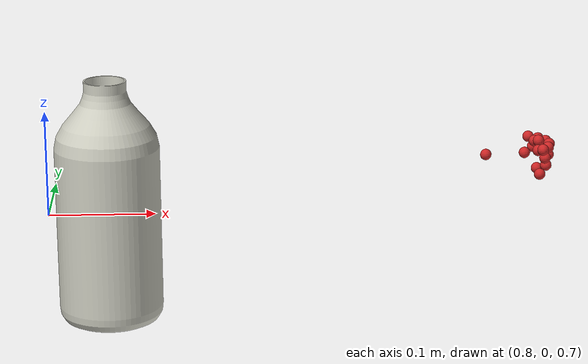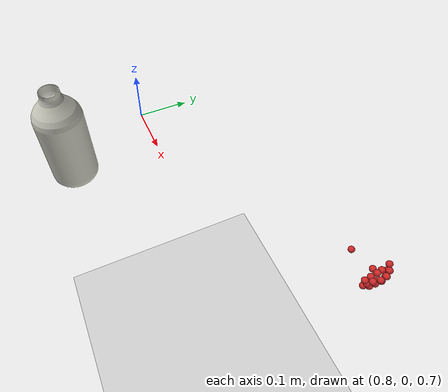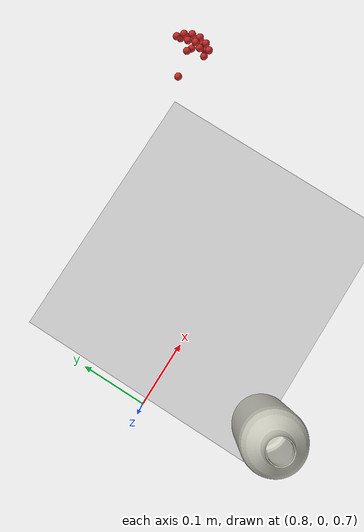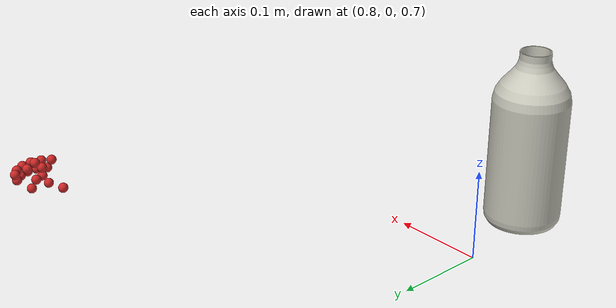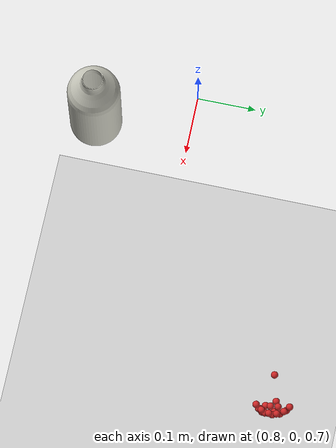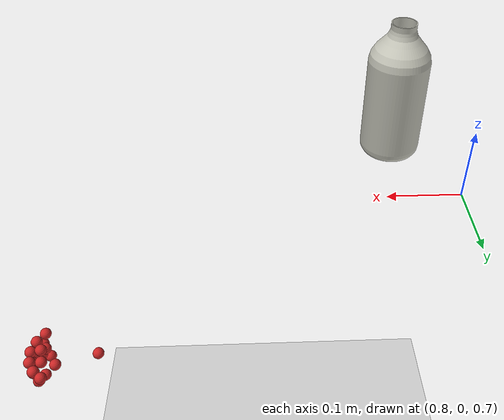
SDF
<sdf version="1.4">
 <world name="default">
  <model name="ground_plane">
   <static>1</static>
   <link name="link">
    <collision name="collision">
     <geometry><plane><normal>0 0 1</normal><size>100 100</size></plane></geometry>
     <surface><friction><ode><mu>100</mu><mu2>50</mu2></ode></friction></surface>
    </collision>
    <visual name="visual">
     <cast_shadows>0</cast_shadows>
     <geometry><plane><normal>0 0 1</normal><size>100 100</size></plane></geometry>
     <material>
      <script><uri>file://media/materials/scripts/gazebo.material</uri><name>Gazebo/Grey</name></script>
     </material>
    </visual>
    <velocity_decay><linear>0</linear><angular>0</angular></velocity_decay>
   </link>
  </model>
  <model name="milk_bottle">
   <static>0</static>
   <link name="link">
    <inertial>
     <mass>0.25</mass>
     <inertia><ixx>0</ixx><ixy>0</ixy><ixz>0</ixz><iyy>0</iyy><iyz>0</iyz><izz>0</izz></inertia>
    </inertial>
    <collision name="colision1">
     <geometry><mesh><uri>model://milk_bottle/meshes/milk_bottle.dae</uri><scale>1 1 1</scale></mesh></geometry>
    </collision>
    <visual name="visual1">
     <geometry><mesh><uri>model://milk_bottle/meshes/milk_bottle.dae</uri><scale>1 1 1</scale></mesh></geometry>
     <material>
      <script><uri>file://media/materials/scripts/gazebo.material</uri><name>Gazebo/PaintedWall</name></script>
     </material>
    </visual>
    <velocity_decay><linear>0</linear><angular>0</angular></velocity_decay>
   </link>
   <pose>0.864342 -0.164381 0.752694 -0.000122 0.000148 -3e-06</pose>
  </model>
  <model name="sphere33">
   <pose>0.022358 -0.024231 -0.158207 0.008135 -0.067468 -0.001806</pose>
   <link name="link">
    <pose>1.27614 0.256149 0.758288 0 -0 0</pose>
    <inertial>
     <mass>0.001</mass>
     <inertia><ixx>0.004</ixx><ixy>0</ixy><ixz>0</ixz><iyy>0.004</iyy><iyz>0</iyz><izz>0.004</izz></inertia>
    </inertial>
    <collision name="collision">
     <surface>
      <contact><ode><kp>1e+10</kp><kd>1</kd></ode></contact>
      <friction><ode><mu>0.01</mu><mu2>0.01</mu2></ode></friction>
     </surface>
     <geometry><sphere><radius>0.006</radius></sphere></geometry>
    </collision>
    <visual name="visual">
     <geometry><sphere><radius>0.006</radius></sphere></geometry>
     <material>
      <script><uri>file://media/materials/scripts/gazebo.material</uri><name>Gazebo/Red</name></script>
     </material>
    </visual>
    <velocity_decay><linear>0</linear><angular>0</angular></velocity_decay>
   </link>
   <static>0</static>
  </model>
  <model name="sphere38">
   <pose>0.009543 -0.038535 -0.086133 -0.012007 -0.003681 0.004695</pose>
   <link name="link">
    <pose>1.30014 0.232149 0.770288 0 -0 0</pose>
    <inertial>
     <mass>0.001</mass>
     <inertia><ixx>0.004</ixx><ixy>0</ixy><ixz>0</ixz><iyy>0.004</iyy><iyz>0</iyz><izz>0.004</izz></inertia>
    </inertial>
    <collision name="collision">
     <surface>
      <contact><ode><kp>1e+10</kp><kd>1</kd></ode></contact>
      <friction><ode><mu>0.01</mu><mu2>0.01</mu2></ode></friction>
     </surface>
     <geometry><sphere><radius>0.006</radius></sphere></geometry>
    </collision>
    <visual name="visual">
     <geometry><sphere><radius>0.006</radius></sphere></geometry>
     <material>
      <script><uri>file://media/materials/scripts/gazebo.material</uri><name>Gazebo/Red</name></script>
     </material>
    </visual>
    <velocity_decay><linear>0</linear><angular>0</angular></velocity_decay>
   </link>
   <static>0</static>
  </model>
  <model name="sphere53">
   <pose>0.016061 -0.043295 -0.139832 0.002945 -0.018806 0.00051</pose>
   <link name="link">
    <pose>1.30014 0.256149 0.782288 0 -0 0</pose>
    <inertial>
     <mass>0.001</mass>
     <inertia><ixx>0.004</ixx><ixy>0</ixy><ixz>0</ixz><iyy>0.004</iyy><iyz>0</iyz><izz>0.004</izz></inertia>
    </inertial>
    <collision name="collision">
     <surface>
      <contact><ode><kp>1e+10</kp><kd>1</kd></ode></contact>
      <friction><ode><mu>0.01</mu><mu2>0.01</mu2></ode></friction>
     </surface>
     <geometry><sphere><radius>0.006</radius></sphere></geometry>
    </collision>
    <visual name="visual">
     <geometry><sphere><radius>0.006</radius></sphere></geometry>
     <material>
      <script><uri>file://media/materials/scripts/gazebo.material</uri><name>Gazebo/Red</name></script>
     </material>
    </visual>
    <velocity_decay><linear>0</linear><angular>0</angular></velocity_decay>
   </link>
   <static>0</static>
  </model>
  <model name="sphere59">
   <pose>0.014551 -0.04065 -0.125415 -0.013802 -0.008228 0.000565</pose>
   <link name="link">
    <pose>1.30014 0.244149 0.794288 0 -0 0</pose>
    <inertial>
     <mass>0.001</mass>
     <inertia><ixx>0.004</ixx><ixy>0</ixy><ixz>0</ixz><iyy>0.004</iyy><iyz>0</iyz><izz>0.004</izz></inertia>
    </inertial>
    <collision name="collision">
     <surface>
      <contact><ode><kp>1e+10</kp><kd>1</kd></ode></contact>
      <friction><ode><mu>0.01</mu><mu2>0.01</mu2></ode></friction>
     </surface>
     <geometry><sphere><radius>0.006</radius></sphere></geometry>
    </collision>
    <visual name="visual">
     <geometry><sphere><radius>0.006</radius></sphere></geometry>
     <material>
      <script><uri>file://media/materials/scripts/gazebo.material</uri><name>Gazebo/Red</name></script>
     </material>
    </visual>
    <velocity_decay><linear>0</linear><angular>0</angular></velocity_decay>
   </link>
   <static>0</static>
  </model>
  <model name="sphere68">
   <pose>0.007541 -0.009703 -0.114195 0.001084 0.004724 -0.00044</pose>
   <link name="link">
    <pose>1.30014 0.244149 0.806288 0 -0 0</pose>
    <inertial>
     <mass>0.001</mass>
     <inertia><ixx>0.004</ixx><ixy>0</ixy><ixz>0</ixz><iyy>0.004</iyy><iyz>0</iyz><izz>0.004</izz></inertia>
    </inertial>
    <collision name="collision">
     <surface>
      <contact><ode><kp>1e+10</kp><kd>1</kd></ode></contact>
      <friction><ode><mu>0.01</mu><mu2>0.01</mu2></ode></friction>
     </surface>
     <geometry><sphere><radius>0.006</radius></sphere></geometry>
    </collision>
    <visual name="visual">
     <geometry><sphere><radius>0.006</radius></sphere></geometry>
     <material>
      <script><uri>file://media/materials/scripts/gazebo.material</uri><name>Gazebo/Red</name></script>
     </material>
    </visual>
    <velocity_decay><linear>0</linear><angular>0</angular></velocity_decay>
   </link>
   <static>0</static>
  </model>
  <model name="sphere73">
   <pose>0.022296 -0.016003 -0.123962 0.003118 -0.00088 0.000265</pose>
   <link name="link">
    <pose>1.28814 0.232149 0.818288 0 -0 0</pose>
    <inertial>
     <mass>0.001</mass>
     <inertia><ixx>0.004</ixx><ixy>0</ixy><ixz>0</ixz><iyy>0.004</iyy><iyz>0</iyz><izz>0.004</izz></inertia>
    </inertial>
    <collision name="collision">
     <surface>
      <contact><ode><kp>1e+10</kp><kd>1</kd></ode></contact>
      <friction><ode><mu>0.01</mu><mu2>0.01</mu2></ode></friction>
     </surface>
     <geometry><sphere><radius>0.006</radius></sphere></geometry>
    </collision>
    <visual name="visual">
     <geometry><sphere><radius>0.006</radius></sphere></geometry>
     <material>
      <script><uri>file://media/materials/scripts/gazebo.material</uri><name>Gazebo/Red</name></script>
     </material>
    </visual>
    <velocity_decay><linear>0</linear><angular>0</angular></velocity_decay>
   </link>
   <static>0</static>
  </model>
  <model name="sphere74">
   <pose>0.007906 -0.036235 -0.128323 -0.007026 -0.006221 0.001622</pose>
   <link name="link">
    <pose>1.30014 0.232149 0.818288 0 -0 0</pose>
    <inertial>
     <mass>0.001</mass>
     <inertia><ixx>0.004</ixx><ixy>0</ixy><ixz>0</ixz><iyy>0.004</iyy><iyz>0</iyz><izz>0.004</izz></inertia>
    </inertial>
    <collision name="collision">
     <surface>
      <contact><ode><kp>1e+10</kp><kd>1</kd></ode></contact>
      <friction><ode><mu>0.01</mu><mu2>0.01</mu2></ode></friction>
     </surface>
     <geometry><sphere><radius>0.006</radius></sphere></geometry>
    </collision>
    <visual name="visual">
     <geometry><sphere><radius>0.006</radius></sphere></geometry>
     <material>
      <script><uri>file://media/materials/scripts/gazebo.material</uri><name>Gazebo/Red</name></script>
     </material>
    </visual>
    <velocity_decay><linear>0</linear><angular>0</angular></velocity_decay>
   </link>
   <static>0</static>
  </model>
  <model name="sphere85">
   <pose>0.013096 -0.017085 -0.130037 -0.000356 0.000204 0.000125</pose>
   <link name="link">
    <pose>1.28814 0.244149 0.830288 0 -0 0</pose>
    <inertial>
     <mass>0.001</mass>
     <inertia><ixx>0.004</ixx><ixy>0</ixy><ixz>0</ixz><iyy>0.004</iyy><iyz>0</iyz><izz>0.004</izz></inertia>
    </inertial>
    <collision name="collision">
     <surface>
      <contact><ode><kp>1e+10</kp><kd>1</kd></ode></contact>
      <friction><ode><mu>0.01</mu><mu2>0.01</mu2></ode></friction>
     </surface>
     <geometry><sphere><radius>0.006</radius></sphere></geometry>
    </collision>
    <visual name="visual">
     <geometry><sphere><radius>0.006</radius></sphere></geometry>
     <material>
      <script><uri>file://media/materials/scripts/gazebo.material</uri><name>Gazebo/Red</name></script>
     </material>
    </visual>
    <velocity_decay><linear>0</linear><angular>0</angular></velocity_decay>
   </link>
   <static>0</static>
  </model>
  <model name="sphere90">
   <pose>0.010305 0.003646 -0.1555 0.001866 0.001967 0.000532</pose>
   <link name="link">
    <pose>1.27614 0.232149 0.842288 0 -0 0</pose>
    <inertial>
     <mass>0.001</mass>
     <inertia><ixx>0.004</ixx><ixy>0</ixy><ixz>0</ixz><iyy>0.004</iyy><iyz>0</iyz><izz>0.004</izz></inertia>
    </inertial>
    <collision name="collision">
     <surface>
      <contact><ode><kp>1e+10</kp><kd>1</kd></ode></contact>
      <friction><ode><mu>0.01</mu><mu2>0.01</mu2></ode></friction>
     </surface>
     <geometry><sphere><radius>0.006</radius></sphere></geometry>
    </collision>
    <visual name="visual">
     <geometry><sphere><radius>0.006</radius></sphere></geometry>
     <material>
      <script><uri>file://media/materials/scripts/gazebo.material</uri><name>Gazebo/Red</name></script>
     </material>
    </visual>
    <velocity_decay><linear>0</linear><angular>0</angular></velocity_decay>
   </link>
   <static>0</static>
  </model>
  <model name="sphere91">
   <pose>0.01074 -0.01168 -0.149492 0.002055 0.001444 0.000354</pose>
   <link name="link">
    <pose>1.28814 0.232149 0.842288 0 -0 0</pose>
    <inertial>
     <mass>0.001</mass>
     <inertia><ixx>0.004</ixx><ixy>0</ixy><ixz>0</ixz><iyy>0.004</iyy><iyz>0</iyz><izz>0.004</izz></inertia>
    </inertial>
    <collision name="collision">
     <surface>
      <contact><ode><kp>1e+10</kp><kd>1</kd></ode></contact>
      <friction><ode><mu>0.01</mu><mu2>0.01</mu2></ode></friction>
     </surface>
     <geometry><sphere><radius>0.006</radius></sphere></geometry>
    </collision>
    <visual name="visual">
     <geometry><sphere><radius>0.006</radius></sphere></geometry>
     <material>
      <script><uri>file://media/materials/scripts/gazebo.material</uri><name>Gazebo/Red</name></script>
     </material>
    </visual>
    <velocity_decay><linear>0</linear><angular>0</angular></velocity_decay>
   </link>
   <static>0</static>
  </model>
  <model name="sphere92">
   <pose>0.009744 -0.013414 -0.153676 0.001704 0.002069 0.002606</pose>
   <link name="link">
    <pose>1.30014 0.232149 0.842288 0 -0 0</pose>
    <inertial>
     <mass>0.001</mass>
     <inertia><ixx>0.004</ixx><ixy>0</ixy><ixz>0</ixz><iyy>0.004</iyy><iyz>0</iyz><izz>0.004</izz></inertia>
    </inertial>
    <collision name="collision">
     <surface>
      <contact><ode><kp>1e+10</kp><kd>1</kd></ode></contact>
      <friction><ode><mu>0.01</mu><mu2>0.01</mu2></ode></friction>
     </surface>
     <geometry><sphere><radius>0.006</radius></sphere></geometry>
    </collision>
    <visual name="visual">
     <geometry><sphere><radius>0.006</radius></sphere></geometry>
     <material>
      <script><uri>file://media/materials/scripts/gazebo.material</uri><name>Gazebo/Red</name></script>
     </material>
    </visual>
    <velocity_decay><linear>0</linear><angular>0</angular></velocity_decay>
   </link>
   <static>0</static>
  </model>
  <model name="sphere101">
   <pose>0.019572 0.012897 -0.186649 -0.003668 -0.014768 -0.002533</pose>
   <link name="link">
    <pose>1.30014 0.232149 0.854288 0 -0 0</pose>
    <inertial>
     <mass>0.001</mass>
     <inertia><ixx>0.004</ixx><ixy>0</ixy><ixz>0</ixz><iyy>0.004</iyy><iyz>0</iyz><izz>0.004</izz></inertia>
    </inertial>
    <collision name="collision">
     <surface>
      <contact><ode><kp>1e+10</kp><kd>1</kd></ode></contact>
      <friction><ode><mu>0.01</mu><mu2>0.01</mu2></ode></friction>
     </surface>
     <geometry><sphere><radius>0.006</radius></sphere></geometry>
    </collision>
    <visual name="visual">
     <geometry><sphere><radius>0.006</radius></sphere></geometry>
     <material>
      <script><uri>file://media/materials/scripts/gazebo.material</uri><name>Gazebo/Red</name></script>
     </material>
    </visual>
    <velocity_decay><linear>0</linear><angular>0</angular></velocity_decay>
   </link>
   <static>0</static>
  </model>
  <model name="sphere104">
   <pose>0.009132 -0.009649 -0.198331 -0.000229 -0.008869 5.1e-05</pose>
   <link name="link">
    <pose>1.30014 0.244149 0.854288 0 -0 0</pose>
    <inertial>
     <mass>0.001</mass>
     <inertia><ixx>0.004</ixx><ixy>0</ixy><ixz>0</ixz><iyy>0.004</iyy><iyz>0</iyz><izz>0.004</izz></inertia>
    </inertial>
    <collision name="collision">
     <surface>
      <contact><ode><kp>1e+10</kp><kd>1</kd></ode></contact>
      <friction><ode><mu>0.01</mu><mu2>0.01</mu2></ode></friction>
     </surface>
     <geometry><sphere><radius>0.006</radius></sphere></geometry>
    </collision>
    <visual name="visual">
     <geometry><sphere><radius>0.006</radius></sphere></geometry>
     <material>
      <script><uri>file://media/materials/scripts/gazebo.material</uri><name>Gazebo/Red</name></script>
     </material>
    </visual>
    <velocity_decay><linear>0</linear><angular>0</angular></velocity_decay>
   </link>
   <static>0</static>
  </model>
  <model name="sphere108">
   <pose>0.018674 0.027766 -0.169933 -6e-05 0.000319 -0.001193</pose>
   <link name="link">
    <pose>1.27614 0.232149 0.866288 0 -0 0</pose>
    <inertial>
     <mass>0.001</mass>
     <inertia><ixx>0.004</ixx><ixy>0</ixy><ixz>0</ixz><iyy>0.004</iyy><iyz>0</iyz><izz>0.004</izz></inertia>
    </inertial>
    <collision name="collision">
     <surface>
      <contact><ode><kp>1e+10</kp><kd>1</kd></ode></contact>
      <friction><ode><mu>0.01</mu><mu2>0.01</mu2></ode></friction>
     </surface>
     <geometry><sphere><radius>0.006</radius></sphere></geometry>
    </collision>
    <visual name="visual">
     <geometry><sphere><radius>0.006</radius></sphere></geometry>
     <material>
      <script><uri>file://media/materials/scripts/gazebo.material</uri><name>Gazebo/Red</name></script>
     </material>
    </visual>
    <velocity_decay><linear>0</linear><angular>0</angular></velocity_decay>
   </link>
   <static>0</static>
  </model>
  <model name="sphere109">
   <pose>0.010768 0.004165 -0.168893 -0.002532 0.000345 0.000969</pose>
   <link name="link">
    <pose>1.28814 0.232149 0.866288 0 -0 0</pose>
    <inertial>
     <mass>0.001</mass>
     <inertia><ixx>0.004</ixx><ixy>0</ixy><ixz>0</ixz><iyy>0.004</iyy><iyz>0</iyz><izz>0.004</izz></inertia>
    </inertial>
    <collision name="collision">
     <surface>
      <contact><ode><kp>1e+10</kp><kd>1</kd></ode></contact>
      <friction><ode><mu>0.01</mu><mu2>0.01</mu2></ode></friction>
     </surface>
     <geometry><sphere><radius>0.006</radius></sphere></geometry>
    </collision>
    <visual name="visual">
     <geometry><sphere><radius>0.006</radius></sphere></geometry>
     <material>
      <script><uri>file://media/materials/scripts/gazebo.material</uri><name>Gazebo/Red</name></script>
     </material>
    </visual>
    <velocity_decay><linear>0</linear><angular>0</angular></velocity_decay>
   </link>
   <static>0</static>
  </model>
  <model name="sphere110">
   <pose>0.013001 -0.006263 -0.170073 -0.000148 -0.000175 0.000656</pose>
   <link name="link">
    <pose>1.30014 0.232149 0.866288 0 -0 0</pose>
    <inertial>
     <mass>0.001</mass>
     <inertia><ixx>0.004</ixx><ixy>0</ixy><ixz>0</ixz><iyy>0.004</iyy><iyz>0</iyz><izz>0.004</izz></inertia>
    </inertial>
    <collision name="collision">
     <surface>
      <contact><ode><kp>1e+10</kp><kd>1</kd></ode></contact>
      <friction><ode><mu>0.01</mu><mu2>0.01</mu2></ode></friction>
     </surface>
     <geometry><sphere><radius>0.006</radius></sphere></geometry>
    </collision>
    <visual name="visual">
     <geometry><sphere><radius>0.006</radius></sphere></geometry>
     <material>
      <script><uri>file://media/materials/scripts/gazebo.material</uri><name>Gazebo/Red</name></script>
     </material>
    </visual>
    <velocity_decay><linear>0</linear><angular>0</angular></velocity_decay>
   </link>
   <static>0</static>
  </model>
  <model name="sphere112">
   <pose>0.020054 0.007108 -0.175597 0.000916 -0.003953 0.000199</pose>
   <link name="link">
    <pose>1.28814 0.244149 0.866288 0 -0 0</pose>
    <inertial>
     <mass>0.001</mass>
     <inertia><ixx>0.004</ixx><ixy>0</ixy><ixz>0</ixz><iyy>0.004</iyy><iyz>0</iyz><izz>0.004</izz></inertia>
    </inertial>
    <collision name="collision">
     <surface>
      <contact><ode><kp>1e+10</kp><kd>1</kd></ode></contact>
      <friction><ode><mu>0.01</mu><mu2>0.01</mu2></ode></friction>
     </surface>
     <geometry><sphere><radius>0.006</radius></sphere></geometry>
    </collision>
    <visual name="visual">
     <geometry><sphere><radius>0.006</radius></sphere></geometry>
     <material>
      <script><uri>file://media/materials/scripts/gazebo.material</uri><name>Gazebo/Red</name></script>
     </material>
    </visual>
    <velocity_decay><linear>0</linear><angular>0</angular></velocity_decay>
   </link>
   <static>0</static>
  </model>
  <model name="sphere113">
   <pose>0.012775 -0.005265 -0.172853 0.000986 -0.00189 0.001267</pose>
   <link name="link">
    <pose>1.30014 0.244149 0.866288 0 -0 0</pose>
    <inertial>
     <mass>0.001</mass>
     <inertia><ixx>0.004</ixx><ixy>0</ixy><ixz>0</ixz><iyy>0.004</iyy><iyz>0</iyz><izz>0.004</izz></inertia>
    </inertial>
    <collision name="collision">
     <surface>
      <contact><ode><kp>1e+10</kp><kd>1</kd></ode></contact>
      <friction><ode><mu>0.01</mu><mu2>0.01</mu2></ode></friction>
     </surface>
     <geometry><sphere><radius>0.006</radius></sphere></geometry>
    </collision>
    <visual name="visual">
     <geometry><sphere><radius>0.006</radius></sphere></geometry>
     <material>
      <script><uri>file://media/materials/scripts/gazebo.material</uri><name>Gazebo/Red</name></script>
     </material>
    </visual>
    <velocity_decay><linear>0</linear><angular>0</angular></velocity_decay>
   </link>
   <static>0</static>
  </model>
  <model name="sphere116">
   <pose>0.007429 0.007858 -0.194997 0.004169 -0.010278 -0.004767</pose>
   <link name="link">
    <pose>1.30014 0.256149 0.866288 0 -0 0</pose>
    <inertial>
     <mass>0.001</mass>
     <inertia><ixx>0.004</ixx><ixy>0</ixy><ixz>0</ixz><iyy>0.004</iyy><iyz>0</iyz><izz>0.004</izz></inertia>
    </inertial>
    <collision name="collision">
     <surface>
      <contact><ode><kp>1e+10</kp><kd>1</kd></ode></contact>
      <friction><ode><mu>0.01</mu><mu2>0.01</mu2></ode></friction>
     </surface>
     <geometry><sphere><radius>0.006</radius></sphere></geometry>
    </collision>
    <visual name="visual">
     <geometry><sphere><radius>0.006</radius></sphere></geometry>
     <material>
      <script><uri>file://media/materials/scripts/gazebo.material</uri><name>Gazebo/Red</name></script>
     </material>
    </visual>
    <velocity_decay><linear>0</linear><angular>0</angular></velocity_decay>
   </link>
   <static>0</static>
  </model>
 </world>
</sdf>
